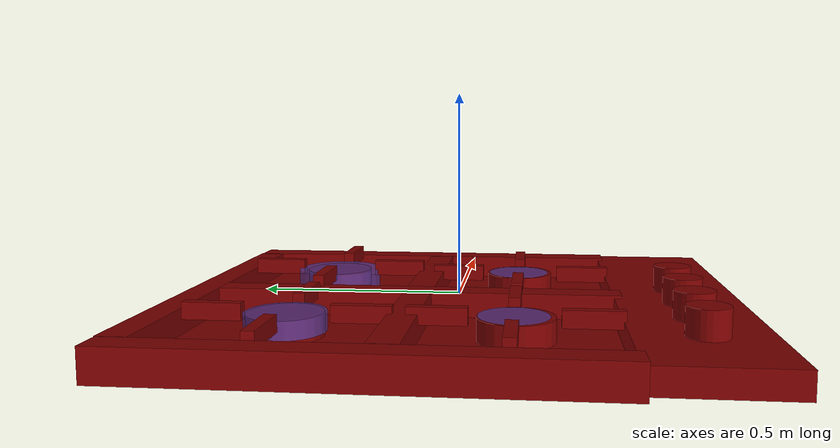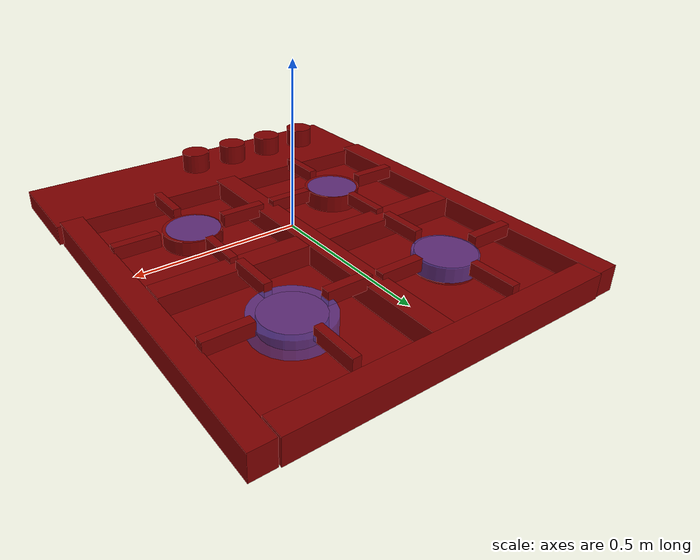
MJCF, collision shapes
<mujoco model="model">
  <compiler angle="radian"/>
  <asset>
    <mesh file="visuals/knob_front_left.obj" name="knob_front_left_vis"/>
    <mesh file="visuals/knob_front_right.obj" name="knob_front_right_vis"/>
    <mesh file="visuals/knob_rear_left.obj" name="knob_rear_left_vis"/>
    <mesh file="visuals/knob_rear_right.obj" name="knob_rear_right_vis"/>
    <mesh file="visuals/Body001.obj" name="Body001_vis"/>
    <texture file="visuals/T_BC001.png" name="Body001_material" type="2d"/>
    <material name="Body001_material" rgba="1 1 1 1.0" texture="Body001_material" shininess="1" specular="1"/>
    <texture file="visuals/T_BC001.png" name="knob_front_left_material" type="2d"/>
    <material name="knob_front_left_material" rgba="1 1 1 1.0" texture="knob_front_left_material" shininess="0.4472135901451111" specular="0.3103448502657381"/>
    <texture file="visuals/T_BC001.png" name="knob_front_right_material" type="2d"/>
    <material name="knob_front_right_material" rgba="1 1 1 1.0" texture="knob_front_right_material" shininess="0.4472135901451111" specular="0.3103448502657381"/>
    <texture file="visuals/T_BC001.png" name="knob_rear_left_material" type="2d"/>
    <material name="knob_rear_left_material" rgba="1 1 1 1.0" texture="knob_rear_left_material" shininess="0.4472135901451111" specular="0.3103448502657381"/>
    <texture file="visuals/T_BC001.png" name="knob_rear_right_material" type="2d"/>
    <material name="knob_rear_right_material" rgba="1 1 1 1.0" texture="knob_rear_right_material" shininess="0.4472135901451111" specular="0.3103448502657381"/>
  </asset>
  <default>
    <default class="visual">
      <geom conaffinity="0" contype="0" group="1" type="mesh"/>
    </default>
    <default class="collision">
      <geom group="0" rgba="0.5 0 0 0.5"/>
    </default>
    <default class="spawn">
      <geom group="0" rgba="1 1 1 0.5" contype="0" conaffinity="0"/>
      <site group="0" rgba="1 1 1 0.5"/>
    </default>
    <default class="region">
      <geom group="1" conaffinity="0" contype="0" rgba="0 1 0 0"/>
    </default>
  </default>
  <worldbody>
    <body>
      <body name="object">
        <site type="cylinder" rgba="0.3 0.4 1 0.5" size="0.09422053396701813 0.02187785692512989" pos="-0.257793 0.370886 -0.016056" name="burner_on_rear_left"/>
        <site type="cylinder" rgba="0.3 0.4 1 0.5" size="0.0813269317150116 0.021018492057919502" pos="0.254775 -0.144005 -0.012994" name="burner_on_front_right"/>
        <site type="cylinder" rgba="0.3 0.4 1 0.5" size="0.11411597579717636 0.027542710304260254" pos="0.255403 0.370478 -0.017362" name="burner_on_rear_right"/>
        <site type="cylinder" rgba="0.3 0.4 1 0.5" size="0.08157439529895782 0.022126654163002968" pos="-0.258286 -0.144869 -0.014244" name="burner_on_front_left"/>
        <geom mesh="Body001_vis" type="mesh" solimp="0.998 0.998 0.001" solref="0.001 1" density="100" friction="0.95 0.3 0.1" class="visual" material="Body001_material"/>
        <geom class="collision" type="box" pos="0.004297 -0.533682 -0.028353" size="0.5791443586349487 0.15065798163414001 0.029499823227524757" quat="1.0 0.0 0.0 0.0"/>
        <geom class="collision" type="box" pos="-0.540869 0.142662 -0.030986" size="0.03468067944049835 0.5388192534446716 0.03893231600522995" quat="1.0 0.0 0.0 0.0"/>
        <geom class="collision" type="box" pos="-0.004483 0.102353 -0.030986" size="0.500583291053772 0.034680578857660294 0.03893235698342323" quat="1.0 0.0 0.0 0.0"/>
        <geom class="collision" type="box" pos="0.535026 0.142662 -0.030986" size="0.0346805639564991 0.5388182997703552 0.03893239423632622" quat="1.0 0.0 0.0 0.0"/>
        <geom class="collision" type="box" pos="-0.004483 0.650737 -0.030986" size="0.5005823373794556 0.03468045964837074 0.0389324352145195" quat="1.0 0.0 0.0 0.0"/>
        <geom class="collision" type="box" pos="0.001046 0.106947 -0.030986" size="0.03468044474720955 0.5094226002693176 0.038932472467422485" quat="1.0 0.0 0.0 0.0"/>
        <geom class="collision" type="box" pos="-0.084993 0.371271 0.004848" size="0.06967095285654068 0.014393439516425133 0.020225435495376587" quat="1.0 0.0 0.0 0.0"/>
        <geom class="collision" type="box" pos="-0.430418 0.371271 0.004848" size="0.06967085599899292 0.014393415302038193 0.020225413143634796" quat="1.0 0.0 0.0 0.0"/>
        <geom class="collision" type="box" pos="-0.257110 0.540825 0.004848" size="0.012134169228374958 0.06966866552829742 0.020225390791893005" quat="1.0 0.0 0.0 0.0"/>
        <geom class="collision" type="box" pos="-0.257110 0.195399 0.004848" size="0.012134169228374958 0.06966866552829742 0.020225368440151215" quat="1.0 0.0 0.0 0.0"/>
        <geom class="collision" type="box" pos="-0.257110 -0.319169 0.004848" size="0.012134169228374958 0.06966866552829742 0.020225346088409424" quat="1.0 0.0 0.0 0.0"/>
        <geom class="collision" type="box" pos="-0.257110 0.026257 0.004848" size="0.012134169228374958 0.06966866552829742 0.020225321874022484" quat="1.0 0.0 0.0 0.0"/>
        <geom class="collision" type="box" pos="-0.430418 -0.143297 0.004848" size="0.06967034935951233 0.014393292367458344 0.020225299522280693" quat="1.0 0.0 0.0 0.0"/>
        <geom class="collision" type="box" pos="-0.084993 -0.143297 0.004848" size="0.06967025250196457 0.014393268153071404 0.020225277170538902" quat="1.0 0.0 0.0 0.0"/>
        <geom class="collision" type="box" pos="0.434123 -0.144382 0.004848" size="0.06967014819383621 0.014393243007361889 0.02022525481879711" quat="1.0 0.0 0.0 0.0"/>
        <geom class="collision" type="box" pos="0.088697 -0.144382 0.004848" size="0.06967005133628845 0.014393218792974949 0.02022523246705532" quat="1.0 0.0 0.0 0.0"/>
        <geom class="collision" type="box" pos="0.256001 0.026257 0.004848" size="0.012134169228374958 0.06966866552829742 0.02022521011531353" quat="1.0 0.0 0.0 0.0"/>
        <geom class="collision" type="box" pos="0.256001 -0.319169 0.004848" size="0.012134169228374958 0.06966866552829742 0.02022518590092659" quat="1.0 0.0 0.0 0.0"/>
        <geom class="collision" type="box" pos="0.256599 0.196302 0.014884" size="0.012134169228374958 0.06966866552829742 0.0202251635491848" quat="1.0 0.0 0.0 0.0"/>
        <geom class="collision" type="box" pos="0.255242 0.541728 0.014884" size="0.012134169228374958 0.06966866552829742 0.02022514119744301" quat="1.0 0.0 0.0 0.0"/>
        <geom class="collision" type="box" pos="0.088697 0.370095 0.014884" size="0.06966954469680786 0.0143930958583951 0.020225118845701218" quat="1.0 0.0 0.0 0.0"/>
        <geom class="collision" type="box" pos="0.434123 0.370293 0.014884" size="0.0696694478392601 0.01439307164400816 0.020225096493959427" quat="1.0 0.0 0.0 0.0"/>
        <geom class="collision" type="box" pos="-0.266722 0.106947 -0.058658" size="0.2357291430234909 0.5094113349914551 0.004438656382262707" quat="1.0 0.0 0.0 0.0"/>
        <geom class="collision" type="box" pos="0.272303 0.106947 -0.058658" size="0.2357291430234909 0.5094113349914551 0.004438656382262707" quat="1.0 0.0 0.0 0.0"/>
        <geom class="collision" type="cylinder" pos="0.257933 -0.145931 -0.015314" size="0.08877573907375336 0.022109780460596085" quat="1.0 0.0 0.0 0.0"/>
        <geom class="collision" type="cylinder" pos="0.255881 0.370548 -0.013092" size="0.08877573907375336 0.022109761834144592" quat="1.0 0.0 0.0 0.0"/>
        <geom class="collision" type="cylinder" pos="-0.260626 0.370548 -0.021519" size="0.08877573907375336 0.02711840160191059" quat="1.0 0.0 0.0 0.0"/>
        <geom class="collision" type="cylinder" pos="-0.260626 -0.150214 -0.019832" size="0.08877573907375336 0.02711840160191059" quat="1.0 0.0 0.0 0.0"/>
        <body name="knob_front_left">
          <joint axis="0.0 0.0 -1.0" pos="-0.393402 -0.533489 0.036136" limited="true" name="knob_front_left_joint" range="0.0 3.3161255787892263" type="hinge" damping="0.05" armature="0.001"/>
          <geom mesh="knob_front_left_vis" type="mesh" solimp="0.998 0.998 0.001" solref="0.001 1" density="100" friction="0.95 0.3 0.1" class="visual" material="knob_front_left_material"/>
          <geom class="collision" type="cylinder" pos="-0.393492 -0.533648 0.040000" size="0.04551776126027107 0.03160817548632622" quat="1.0 0.0 0.0 0.0"/>
        </body>
        <body name="knob_front_right">
          <joint axis="0.0 0.0 -1.0" pos="0.043796 -0.533489 0.036136" limited="true" name="knob_front_right_joint" range="0.0 3.3161255787892263" type="hinge" damping="0.05" armature="0.001"/>
          <geom mesh="knob_front_right_vis" type="mesh" solimp="0.998 0.998 0.001" solref="0.001 1" density="100" friction="0.95 0.3 0.1" class="visual" material="knob_front_right_material"/>
          <geom class="collision" type="cylinder" pos="0.043798 -0.533648 0.040000" size="0.04551776126027107 0.03160817548632622" quat="1.0 0.0 0.0 0.0"/>
        </body>
        <body name="knob_rear_left">
          <joint axis="0.0 0.0 -1.0" pos="-0.247653 -0.533489 0.036136" limited="true" name="knob_rear_left_joint" range="0.0 3.3161255787892263" type="hinge" damping="0.05" armature="0.001"/>
          <geom mesh="knob_rear_left_vis" type="mesh" solimp="0.998 0.998 0.001" solref="0.001 1" density="100" friction="0.95 0.3 0.1" class="visual" material="knob_rear_left_material"/>
          <geom class="collision" type="cylinder" pos="-0.247849 -0.533648 0.040000" size="0.04551776126027107 0.03160817548632622" quat="1.0 0.0 0.0 0.0"/>
        </body>
        <body name="knob_rear_right">
          <joint axis="0.0 0.0 -1.0" pos="-0.101928 -0.533489 0.036136" limited="true" name="knob_rear_right_joint" range="0.0 3.3161255787892263" type="hinge" damping="0.05" armature="0.001"/>
          <geom mesh="knob_rear_right_vis" type="mesh" solimp="0.998 0.998 0.001" solref="0.001 1" density="100" friction="0.95 0.3 0.1" class="visual" material="knob_rear_right_material"/>
          <geom class="collision" type="cylinder" pos="-0.101983 -0.533648 0.040000" size="0.04551776126027107 0.03160817548632622" quat="1.0 0.0 0.0 0.0"/>
        </body>
        <geom class="region" name="reg_main" type="box" pos="-0.0010419999999999874 0.0 -0.033331" size="0.582399 0.69437 0.035011"/>
      </body>
    </body>
  </worldbody>
  <actuator>
    <motor name="knob_front_left_joint_actuator" joint="knob_front_left_joint" gear="10"/>
    <motor name="knob_front_right_joint_actuator" joint="knob_front_right_joint" gear="10"/>
    <motor name="knob_rear_left_joint_actuator" joint="knob_rear_left_joint" gear="10"/>
    <motor name="knob_rear_right_joint_actuator" joint="knob_rear_right_joint" gear="10"/>
  </actuator>
</mujoco>
